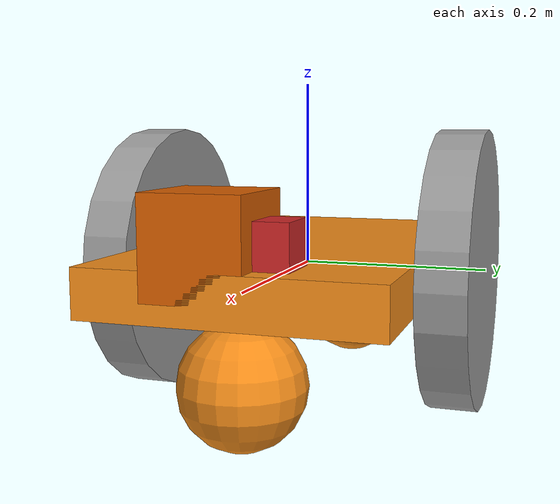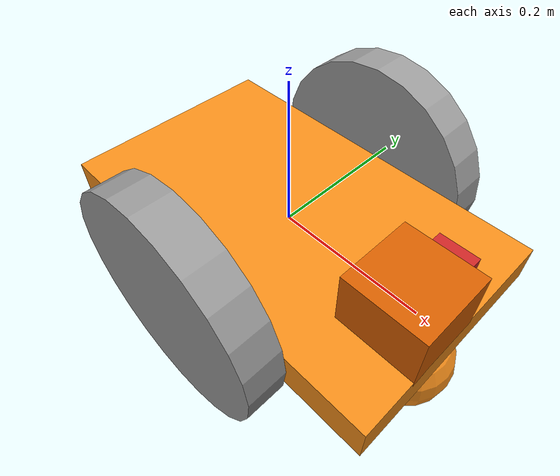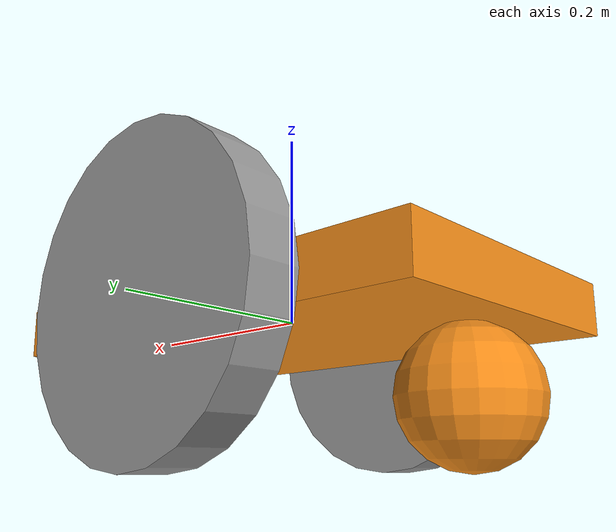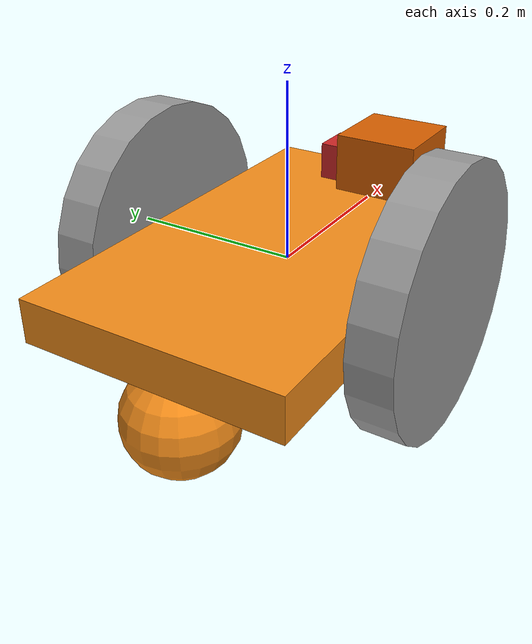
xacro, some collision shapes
<?xml version='1.0'?>

<robot name="my_robot" xmlns:xacro="http://www.ros.org/wiki/xacro">

  <xacro:include filename="$(find my_robot)/urdf/my_robot_rgbd.gazebo" />

  <link name="robot_footprint"></link>

  <joint name="robot_footprint_joint" type="fixed">
    <origin xyz="0 0 0" rpy="0 0 0" />
    <parent link="robot_footprint"/>
    <child link="chassis" />
  </joint>

  <link name='chassis'>
    <pose>0 0 0.15 0 0 0</pose>

    <inertial>
      <mass value="5.0"/>
      <origin xyz="0.0 0 0" rpy=" 0 0 0"/>
      <inertia
          ixx="0.1" ixy="0" ixz="0"
          iyy="0.1" iyz="0"
          izz="0.1"
      />
    </inertial>

    <collision name='collision'>
      <origin xyz="0 0 0" rpy=" 0 0 0"/>
      <geometry>
        <box size=".5 0.2 0.05"/>
      </geometry>
    </collision>

    <visual name='chassis_visual'>
      <origin xyz="0 0 0" rpy=" 0 0 0"/>
      <geometry>
        <box size=".5 0.3 0.05"/>
      </geometry>
    </visual>

    <collision name='front_caster_collision'>
      <origin xyz="0.2 0. -0.0875" rpy=" 0 0 0"/>
      <geometry>
        <sphere radius="0.062499"/>
      </geometry>
    </collision>

    <visual name='front_caster_visual'>
      <origin xyz="0.2 0 -0.0875" rpy=" 0 0 0"/>
      <geometry>
        <sphere radius="0.0625"/>
      </geometry>
    </visual>

    <collision name='back_caster_collision'>
      <origin xyz="-0.2 0 -0.0875" rpy=" 0 0 0"/>
      <geometry>
        <sphere radius="0.062499"/>
      </geometry>
    </collision>

    <visual name='back_caster_visual'>
      <origin xyz="-0.2 0 -0.0875" rpy=" 0 0 0"/>
      <geometry>
        <sphere radius="0.0625"/>
      </geometry>
    </visual>

  </link>

  <link name="left_wheel">
    <collision name='left_wheel_collision'>
      <origin xyz="0 0 0" rpy="0 1.5707 1.5707"/>
      <geometry>
        <cylinder radius="0.15" length="0.05"/>
      </geometry>
    </collision>

    <visual name='left_wheel_visual'>
      <origin xyz="0 0 0" rpy="0 1.5707 1.5707"/>
      <geometry>
        <cylinder radius="0.15" length="0.05"/>
      </geometry>
    </visual>

    <inertial>
      <mass value="5.0"/>
      <origin xyz="0.0 0 0" rpy="0 1.5707 1.5707"/>
      <inertia
          ixx="0.1" ixy="0" ixz="0"
          iyy="0.1" iyz="0"
          izz="0.1"
      />
    </inertial>
  </link>

  <link name="right_wheel">
    <collision name='right_wheel_collision'>
      <origin xyz="0 0 0" rpy="0 1.5707 1.5707"/>
      <geometry>
        <cylinder radius="0.15" length="0.05"/>
      </geometry>
    </collision>

    <visual name='right_wheel_visual'>
      <origin xyz="0 0 0" rpy="0 1.5707 1.5707"/>
      <geometry>
        <cylinder radius="0.15" length="0.05"/>
      </geometry>
    </visual>

    <inertial>
      <mass value="5.0"/>
      <origin xyz="0.0 0 0" rpy="0 1.5707 1.5707"/>
      <inertia
          ixx="0.1" ixy="0" ixz="0"
          iyy="0.1" iyz="0"
          izz="0.1"
      />
    </inertial>
  </link>

  <joint type="continuous" name="left_wheel_hinge">
    <origin xyz="0 0.175 0" rpy="0 0 0"/>
    <child link="left_wheel"/>
    <parent link="chassis"/>
    <axis xyz="0 1 0" rpy="0 0 0"/>
    <limit effort="10000" velocity="1000"/>
    <dynamics damping="1" friction="1"/>
  </joint>

  <joint type="continuous" name="right_wheel_hinge">
    <origin xyz="0 -0.175 0" rpy="0 0 0"/>
    <child link="right_wheel"/>
    <parent link="chassis"/>
    <axis xyz="0 1 0" rpy="0 0 0"/>
    <limit effort="10000" velocity="1000"/>
    <dynamics damping="1" friction="1"/>
  </joint>

  <!-- Add camera -->

  <link name="camera">
    <collision name='camera_collision'>
      <origin xyz="0 0 0" rpy="0 0 0"/>
      <geometry>
        <box size="0.05 0.05 0.05"/>
      </geometry>
    </collision>

    <visual name='camera_visual'>
      <origin xyz="0 0 0" rpy="0 0 0"/>
      <geometry>
        <box size="0.05 0.05 0.05"/>
      </geometry>
    </visual>

    <inertial>
      <mass value="0.1"/>
      <origin xyz="0.0 0 0" rpy="0 0 0"/>
      <inertia
          ixx="1e-6" ixy="0" ixz="0"
          iyy="1e-6" iyz="0"
          izz="1e-6"
      />
    </inertial>
    </link>

  <joint type="fixed" name="camera_joint">
    <origin xyz="0.2 0.030 0.045" rpy="0 0 0"/>
    <child link="camera"/>
    <parent link="chassis"/>
    <axis xyz="0 1 0" rpy="0 0 0"/>
  </joint>

  <!-- Add lidar -->

  <link name="hokuyo">
    <collision name='hokuyo_collision'>
      <origin xyz="0 0 0" rpy="0 0 0"/>
      <geometry>
        <box size="0.1 0.1 0.1"/>
      </geometry>
    </collision>

    <visual name='hokujo_visual'>
      <origin xyz="0 0 0" rpy="0 0 0"/>
      <geometry>
	 <mesh filename="package://my_robot/meshes/hokuyo.dae"/>
      </geometry>
    </visual>

    <inertial>
      <mass value="1e-5"/>
      <origin xyz="0.0 0 0" rpy="0 0 0"/>
      <inertia
          ixx="1e-6" ixy="0" ixz="0"
          iyy="1e-6" iyz="0"
          izz="1e-6"
      />
    </inertial>
    </link>

  <joint type="fixed" name="hokuyo_joint">
    <origin xyz="0.2 -0.03 0.045" rpy="0 0 0"/>
    <child link="hokuyo"/>
    <parent link="chassis"/>
    <axis xyz="0 1 0" rpy="0 0 0"/>
  </joint>

  <!-- Color the components -->

  <gazebo reference="chassis">
    <material>Gazebo/Orange</material>
  </gazebo>

  <gazebo reference="left_wheel">
    <material>Gazebo/Gray</material>
  </gazebo>

  <gazebo reference="right_wheel">
    <material>Gazebo/Gray</material>
  </gazebo>

  <gazebo reference="camera">
    <material>Gazebo/Red</material>
  </gazebo>

  <!-- Add camera optical joint -->
  <joint name="camera_optical_joint" type="fixed">
    <origin xyz="0 0 0" rpy="-1.5707 0 -1.5707"/>
    <parent link="camera"/>
    <child link="camera_link_optical"/>
  </joint>

  <link name="camera_link_optical">
  </link>

</robot>
